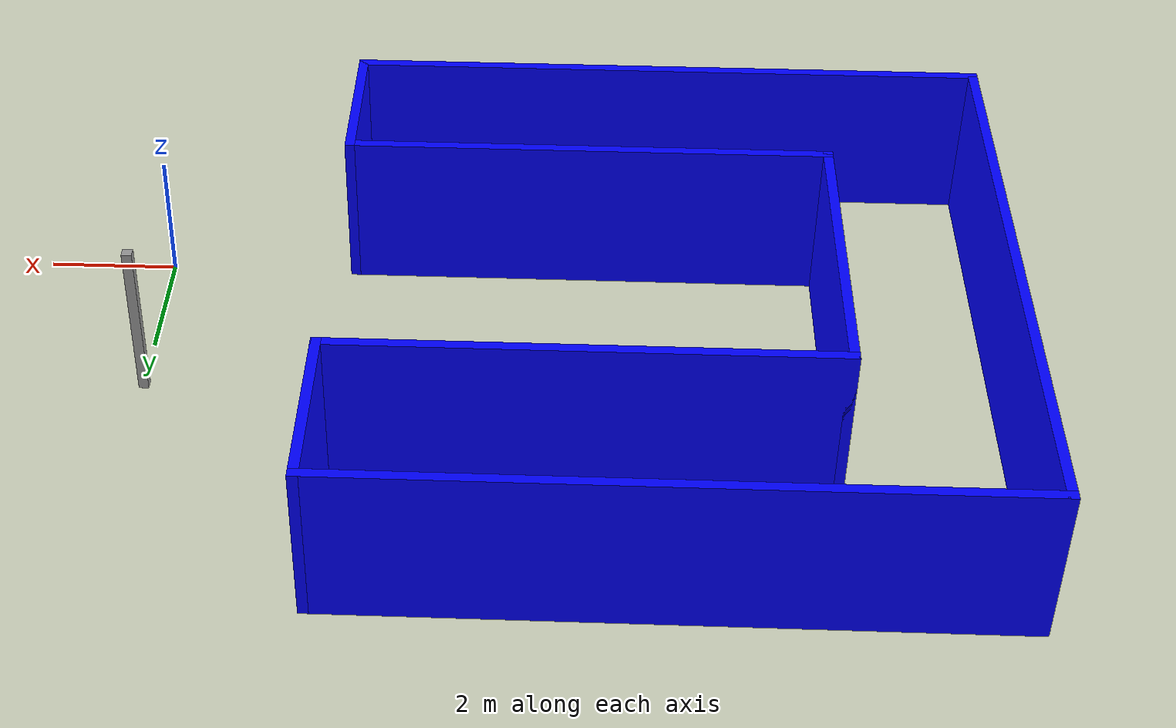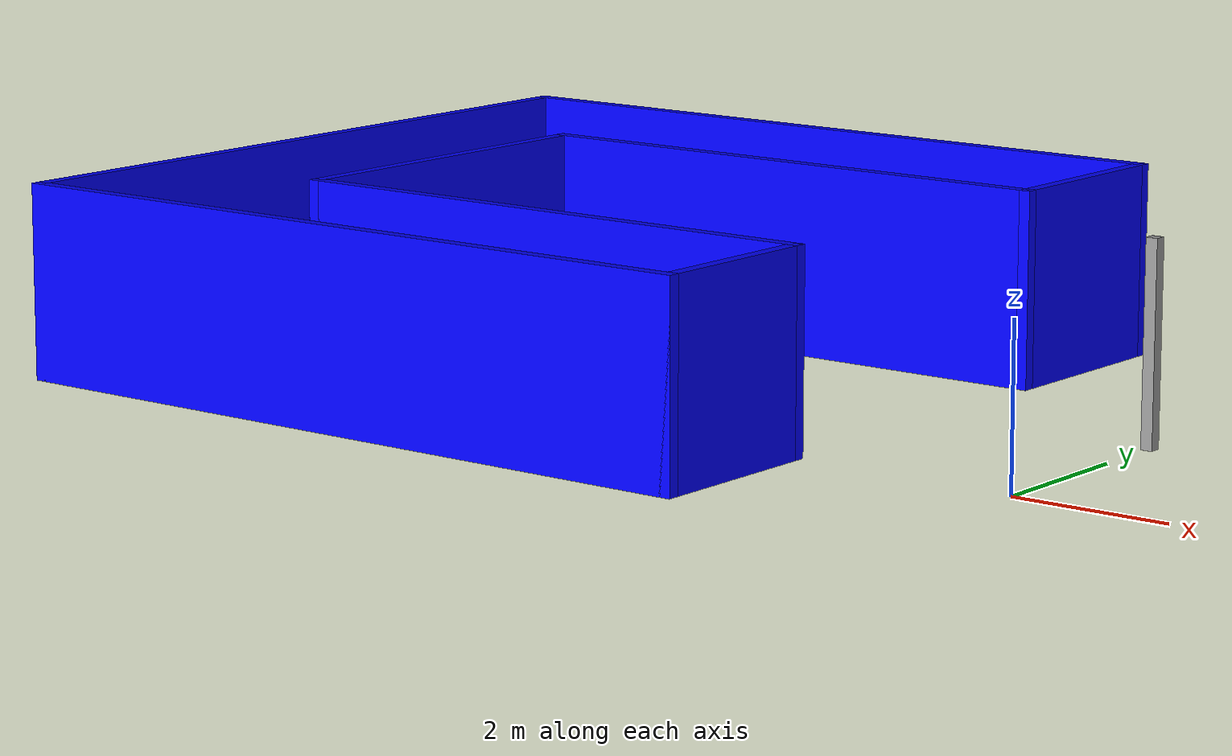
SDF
<?xml version='1.0'?>
<sdf version='1.6'>
  <model name='mybuilding'>
    <pose frame=''>-6.39276 2.55533 0 0 -0 0</pose>
    <link name='Wall_12'>
      <collision name='Wall_12_Collision'>
        <geometry>
          <box>
            <size>0.15 0.15 2.5</size>
          </box>
        </geometry>
        <pose frame=''>0 0 1.25 0 -0 0</pose>
      </collision>
      <visual name='Wall_12_Visual'>
        <pose frame=''>0 0 1.25 0 -0 0</pose>
        <geometry>
          <box>
            <size>0.15 0.15 2.5</size>
          </box>
        </geometry>
        <material>
          <script>
            <uri>file://media/materials/scripts/gazebo.material</uri>
            <name>Gazebo/Grey</name>
          </script>
          <ambient>1 1 1 1</ambient>
        </material>
      </visual>
      <pose frame=''>6.39276 0.37667 0 0 -0 0</pose>
    </link>
    <link name='Wall_89'>
      <collision name='Wall_89_Collision'>
        <geometry>
          <box>
            <size>10 0.15 2.5</size>
          </box>
        </geometry>
        <pose frame=''>0 0 1.25 0 -0 0</pose>
      </collision>
      <visual name='Wall_89_Visual'>
        <pose frame=''>0 0 1.25 0 -0 0</pose>
        <geometry>
          <box>
            <size>10 0.15 2.5</size>
          </box>
        </geometry>
        <material>
          <script>
            <uri>file://media/materials/scripts/gazebo.material</uri>
            <name>Gazebo/Grey</name>
          </script>
          <ambient>0 0 1 1</ambient>
        </material>
      </visual>
      <pose frame=''>-1.46775 4.925 0 0 -0 3.14159</pose>
    </link>
    <link name='Wall_90'>
      <collision name='Wall_90_Collision'>
        <geometry>
          <box>
            <size>10 0.15 2.5</size>
          </box>
        </geometry>
        <pose frame=''>0 0 1.25 0 -0 0</pose>
      </collision>
      <visual name='Wall_90_Visual'>
        <pose frame=''>0 0 1.25 0 -0 0</pose>
        <geometry>
          <box>
            <size>10 0.15 2.5</size>
          </box>
        </geometry>
        <material>
          <script>
            <uri>file://media/materials/scripts/gazebo.material</uri>
            <name>Gazebo/Grey</name>
          </script>
          <ambient>0 0 1 1</ambient>
        </material>
      </visual>
      <pose frame=''>-6.39276 0 0 0 0 -1.5708</pose>
    </link>
    <link name='Wall_91'>
      <collision name='Wall_91_Collision'>
        <geometry>
          <box>
            <size>10 0.15 2.5</size>
          </box>
        </geometry>
        <pose frame=''>0 0 1.25 0 -0 0</pose>
      </collision>
      <visual name='Wall_91_Visual'>
        <pose frame=''>0 0 1.25 0 -0 0</pose>
        <geometry>
          <box>
            <size>10 0.15 2.5</size>
          </box>
        </geometry>
        <material>
          <script>
            <uri>file://media/materials/scripts/gazebo.material</uri>
            <name>Gazebo/Grey</name>
          </script>
          <ambient>0 0 1 1</ambient>
        </material>
      </visual>
      <pose frame=''>-1.46775 -4.925 0 0 -0 0</pose>
    </link>
    <link name='Wall_92'>
      <collision name='Wall_92_Collision'>
        <geometry>
          <box>
            <size>2.5 0.15 2.5</size>
          </box>
        </geometry>
        <pose frame=''>0 0 1.25 0 -0 0</pose>
      </collision>
      <visual name='Wall_92_Visual'>
        <pose frame=''>0 0 1.25 0 -0 0</pose>
        <geometry>
          <box>
            <size>2.5 0.15 2.5</size>
          </box>
        </geometry>
        <material>
          <script>
            <uri>file://media/materials/scripts/gazebo.material</uri>
            <name>Gazebo/Grey</name>
          </script>
          <ambient>0 0 1 1</ambient>
        </material>
      </visual>
      <pose frame=''>3.45724 -3.75 0 0 -0 1.5708</pose>
    </link>
    <link name='Wall_93'>
      <collision name='Wall_93_Collision'>
        <geometry>
          <box>
            <size>7.5 0.15 2.5</size>
          </box>
        </geometry>
        <pose frame=''>0 0 1.25 0 -0 0</pose>
      </collision>
      <visual name='Wall_93_Visual'>
        <pose frame=''>0 0 1.25 0 -0 0</pose>
        <geometry>
          <box>
            <size>7.5 0.15 2.5</size>
          </box>
        </geometry>
        <material>
          <script>
            <uri>file://media/materials/scripts/gazebo.material</uri>
            <name>Gazebo/Grey</name>
          </script>
          <ambient>0 0 1 1</ambient>
        </material>
      </visual>
      <pose frame=''>-0.217754 -2.575 0 0 -0 3.14159</pose>
    </link>
    <link name='Wall_94'>
      <collision name='Wall_94_Collision'>
        <geometry>
          <box>
            <size>5 0.15 2.5</size>
          </box>
        </geometry>
        <pose frame=''>0 0 1.25 0 -0 0</pose>
      </collision>
      <visual name='Wall_94_Visual'>
        <pose frame=''>0 0 1.25 0 -0 0</pose>
        <geometry>
          <box>
            <size>5 0.15 2.5</size>
          </box>
        </geometry>
        <material>
          <script>
            <uri>file://media/materials/scripts/gazebo.material</uri>
            <name>Gazebo/Grey</name>
          </script>
          <ambient>0 0 1 1</ambient>
        </material>
      </visual>
      <pose frame=''>-3.89276 -0.15 0 0 -0 1.5708</pose>
    </link>
    <link name='Wall_95'>
      <collision name='Wall_95_Collision'>
        <geometry>
          <box>
            <size>7.5 0.15 2.5</size>
          </box>
        </geometry>
        <pose frame=''>0 0 1.25 0 -0 0</pose>
      </collision>
      <visual name='Wall_95_Visual'>
        <pose frame=''>0 0 1.25 0 -0 0</pose>
        <geometry>
          <box>
            <size>7.5 0.15 2.5</size>
          </box>
        </geometry>
        <material>
          <script>
            <uri>file://media/materials/scripts/gazebo.material</uri>
            <name>Gazebo/Grey</name>
          </script>
          <ambient>0 0 1 1</ambient>
        </material>
      </visual>
      <pose frame=''>-0.217754 2.275 0 0 -0 0</pose>
    </link>
    <link name='Wall_96'>
      <collision name='Wall_96_Collision'>
        <geometry>
          <box>
            <size>2.8 0.15 2.5</size>
          </box>
        </geometry>
        <pose frame=''>0 0 1.25 0 -0 0</pose>
      </collision>
      <visual name='Wall_96_Visual'>
        <pose frame=''>0 0 1.25 0 -0 0</pose>
        <geometry>
          <box>
            <size>2.8 0.15 2.5</size>
          </box>
        </geometry>
        <material>
          <script>
            <uri>file://media/materials/scripts/gazebo.material</uri>
            <name>Gazebo/Grey</name>
          </script>
          <ambient>0 0 1 1</ambient>
        </material>
      </visual>
      <pose frame=''>3.45724 3.6 0 0 -0 1.5708</pose>
    </link>
    <static>1</static>
  </model>
</sdf>
